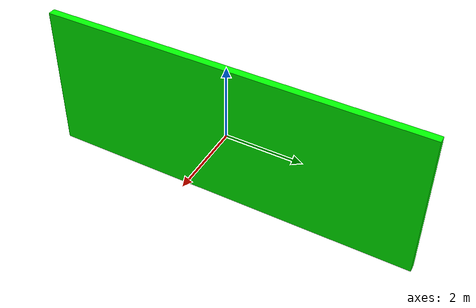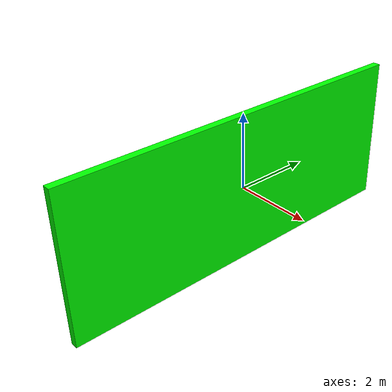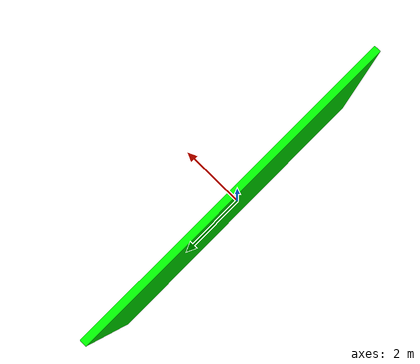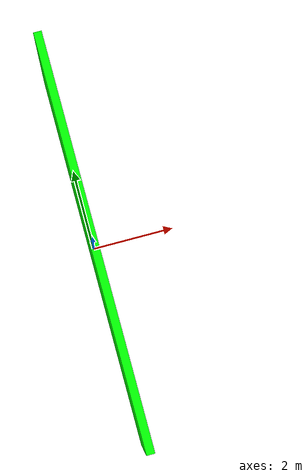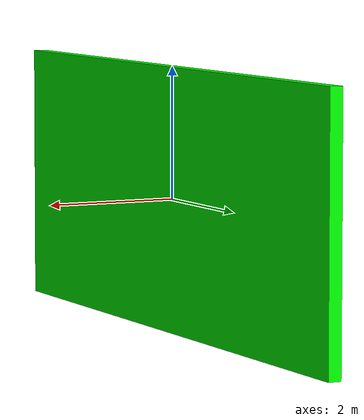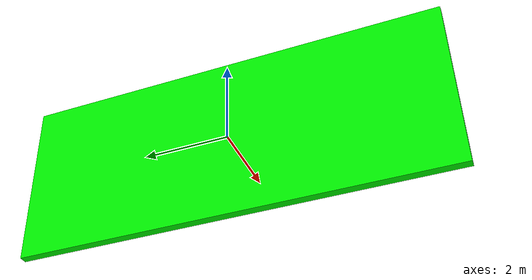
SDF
<?xml version='1.0'?>
<sdf version='1.7'>
  <model name='wall'>
    <link name='link_0'>
      <inertial>
        <mass>1</mass>
        <inertia>
          <ixx>0.166667</ixx>
          <ixy>0</ixy>
          <ixz>0</ixz>
          <iyy>0.166667</iyy>
          <iyz>0</iyz>
          <izz>0.166667</izz>
        </inertia>
        <pose>0 0 0 0 -0 0</pose>
      </inertial>
      <pose>0 0 0 0 -0 0</pose>
      <gravity>1</gravity>
      <visual name='visual'>
        <pose>0 0 0 0 -0 0</pose>
        <geometry>
          <box>
            <size>0.2 10 4</size>
          </box>
        </geometry>
        <material>
          <lighting>1</lighting>
          <script>
            <uri>file://media/materials/scripts/gazebo.material</uri>
            <name>Gazebo/Grey</name>
          </script>
          <shader type='pixel'>
            <normal_map>__default__</normal_map>
          </shader>
          <ambient>0 1 0 1</ambient>
          <diffuse>0.7 0.7 0.7 1</diffuse>
          <specular>0.01 0.01 0.01 1</specular>
          <emissive>0 0 0 1</emissive>
        </material>
        <transparency>0</transparency>
        <cast_shadows>1</cast_shadows>
      </visual>
      <collision name='collision'>
        <laser_retro>0</laser_retro>
        <max_contacts>10</max_contacts>
        <pose>0 0 0 0 -0 0</pose>
        <geometry>
          <box>
            <size>0.2 10 4</size>
          </box>
        </geometry>
      </collision>
    </link>
    <static>1</static>
    <allow_auto_disable>1</allow_auto_disable>
  </model>
</sdf>
